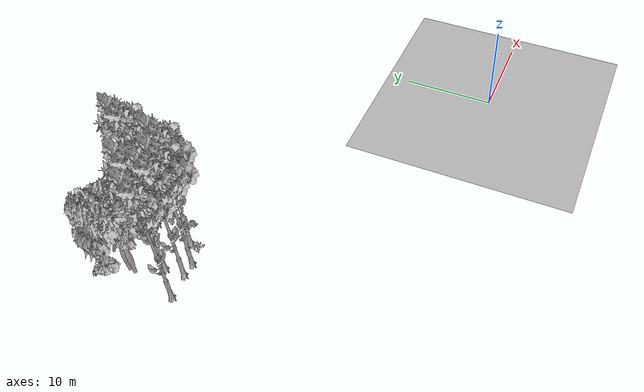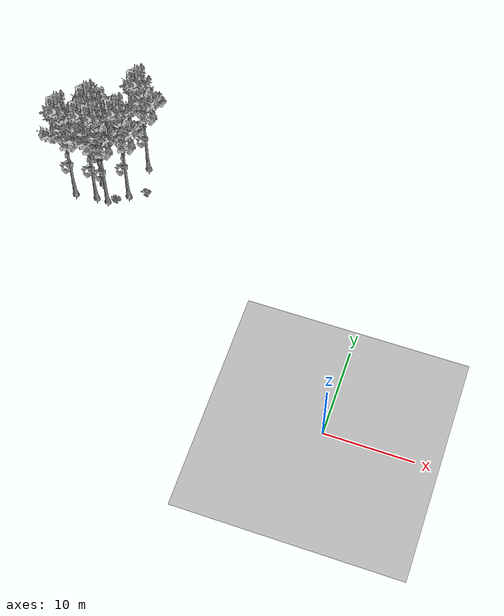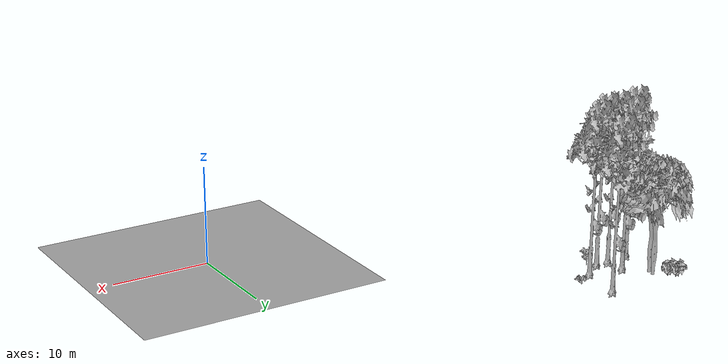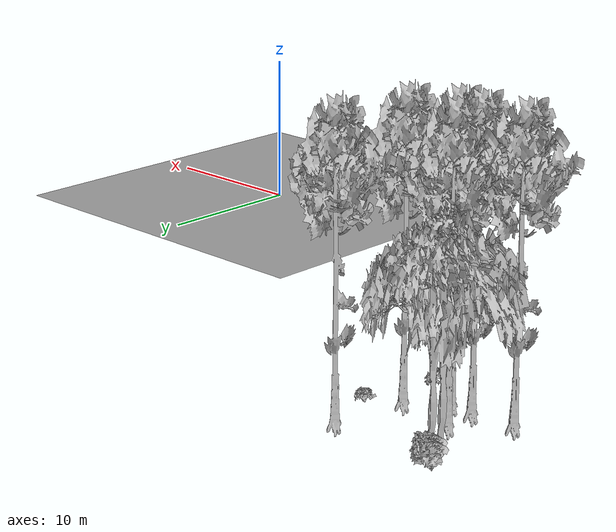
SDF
<sdf version="1.7">
 <world name="default">
  <model name="ground_plane">
   <static>1</static>
   <link name="link">
    <collision name="collision">
     <pose>-50 0 0 0 -0 0</pose>
     <geometry><plane><normal>0 0 1</normal><size>80 80</size></plane></geometry>
     <surface><contact><ode><min_depth>0.01</min_depth><max_vel>0</max_vel></ode></contact></surface>
    </collision>
    <visual name="grass">
     <cast_shadows>0</cast_shadows>
     <geometry>
      <mesh>
       <scale>0.46714285714285714 0.46714285714285714 0.1</scale>
       <uri>file://grass_plane/meshes/grass_plane.dae</uri>
      </mesh>
     </geometry>
    </visual>
   </link>
  </model>
  <model name="Tree 282">
   <static>1</static>
   <pose>-36.353693837260636 19.680766267753036 0 1.57079 -0 0</pose>
   <link name="link">
    <collision name="collision">
     <geometry><mesh><scale>3.5 5 3.5</scale><uri>model://tree_9/meshes/tree_9.obj</uri></mesh></geometry>
    </collision>
    <visual name="visual">
     <geometry><mesh><scale>3.5 5 3.5</scale><uri>model://tree_9/meshes/tree_9.obj</uri></mesh></geometry>
    </visual>
   </link>
  </model>
  <model name="Tree 319">
   <static>1</static>
   <pose>-29.605560113764376 25.787236509368313 0 1.57079 -0 0</pose>
   <link name="link">
    <collision name="collision">
     <geometry><mesh><scale>3.5 5 3.5</scale><uri>model://tree_9/meshes/tree_9.obj</uri></mesh></geometry>
    </collision>
    <visual name="visual">
     <geometry><mesh><scale>3.5 5 3.5</scale><uri>model://tree_9/meshes/tree_9.obj</uri></mesh></geometry>
    </visual>
   </link>
  </model>
  <model name="Tree 322">
   <static>1</static>
   <pose>-33.838758594428114 19.952929473436868 0 1.57079 -0 0</pose>
   <link name="link">
    <collision name="collision">
     <geometry><mesh><scale>3.5 5 3.5</scale><uri>model://tree_9/meshes/tree_9.obj</uri></mesh></geometry>
    </collision>
    <visual name="visual">
     <geometry><mesh><scale>3.5 5 3.5</scale><uri>model://tree_9/meshes/tree_9.obj</uri></mesh></geometry>
    </visual>
   </link>
  </model>
  <model name="Tree 477">
   <static>1</static>
   <pose>-32.446020903343864 19.914805420141747 0 1.57079 -0 0</pose>
   <link name="link">
    <collision name="collision">
     <geometry><mesh><scale>3.5 5 3.5</scale><uri>model://tree_9/meshes/tree_9.obj</uri></mesh></geometry>
    </collision>
    <visual name="visual">
     <geometry><mesh><scale>3.5 5 3.5</scale><uri>model://tree_9/meshes/tree_9.obj</uri></mesh></geometry>
    </visual>
   </link>
  </model>
  <model name="Tree 491">
   <static>1</static>
   <pose>-33.93164587235237 22.0098021157486 0 1.57079 -0 0</pose>
   <link name="link">
    <collision name="collision">
     <geometry><mesh><scale>3.5 5 3.5</scale><uri>model://tree_9/meshes/tree_9.obj</uri></mesh></geometry>
    </collision>
    <visual name="visual">
     <geometry><mesh><scale>3.5 5 3.5</scale><uri>model://tree_9/meshes/tree_9.obj</uri></mesh></geometry>
    </visual>
   </link>
  </model>
  <model name="Tree 570">
   <static>1</static>
   <pose>-30.396551542692865 21.395180202666133 0 1.57079 -0 0</pose>
   <link name="link">
    <collision name="collision">
     <geometry><mesh><scale>3.5 5 3.5</scale><uri>model://tree_9/meshes/tree_9.obj</uri></mesh></geometry>
    </collision>
    <visual name="visual">
     <geometry><mesh><scale>3.5 5 3.5</scale><uri>model://tree_9/meshes/tree_9.obj</uri></mesh></geometry>
    </visual>
   </link>
  </model>
  <model name="Tree 607">
   <static>1</static>
   <pose>-35.36108816998275 24.93940118455106 0 1.57079 -0 0</pose>
   <link name="link">
    <collision name="collision">
     <geometry><mesh><scale>3.5 5 3.5</scale><uri>model://tree_2/meshes/tree_2.obj</uri></mesh></geometry>
    </collision>
    <visual name="visual">
     <geometry><mesh><scale>3.5 5 3.5</scale><uri>model://tree_2/meshes/tree_2.obj</uri></mesh></geometry>
    </visual>
   </link>
  </model>
  <model name="Tree 627">
   <static>1</static>
   <pose>-35.45912909851312 24.300626451408803 0 1.57079 -0 0</pose>
   <link name="link">
    <collision name="collision">
     <geometry><mesh><scale>3.5 5 3.5</scale><uri>model://tree_2/meshes/tree_2.obj</uri></mesh></geometry>
    </collision>
    <visual name="visual">
     <geometry><mesh><scale>3.5 5 3.5</scale><uri>model://tree_2/meshes/tree_2.obj</uri></mesh></geometry>
    </visual>
   </link>
  </model>
  <model name="Bush 88">
   <static>1</static>
   <pose>-28.59467770132586 22.322680542330076 0 1.57079 -0 0</pose>
   <link name="link">
    <collision name="collision">
     <geometry><mesh><scale>2 2 2</scale><uri>model://bush_2/meshes/bush_2.obj</uri></mesh></geometry>
     <surface><contact><collide_without_contact>false</collide_without_contact></contact></surface>
    </collision>
    <visual name="visual">
     <geometry><mesh><scale>2 2 2</scale><uri>model://bush_2/meshes/bush_2.obj</uri></mesh></geometry>
    </visual>
   </link>
  </model>
  <model name="Bush 174">
   <static>1</static>
   <pose>-31.1966641873755 19.894442632269353 0 1.57079 -0 0</pose>
   <link name="link">
    <collision name="collision">
     <geometry><mesh><scale>2 2 2</scale><uri>model://bush_5/meshes/bush_5.obj</uri></mesh></geometry>
     <surface><contact><collide_without_contact>false</collide_without_contact></contact></surface>
    </collision>
    <visual name="visual">
     <geometry><mesh><scale>2 2 2</scale><uri>model://bush_5/meshes/bush_5.obj</uri></mesh></geometry>
    </visual>
   </link>
  </model>
  <model name="Bush 464">
   <static>1</static>
   <pose>-36.739412619075516 26.624565206802643 0 1.57079 -0 0</pose>
   <link name="link">
    <collision name="collision">
     <geometry><mesh><scale>2 2 2</scale><uri>model://bush_1/meshes/bush_1.obj</uri></mesh></geometry>
     <surface><contact><collide_without_contact>false</collide_without_contact></contact></surface>
    </collision>
    <visual name="visual">
     <geometry><mesh><scale>2 2 2</scale><uri>model://bush_1/meshes/bush_1.obj</uri></mesh></geometry>
    </visual>
   </link>
  </model>
  <model name="Bush 597">
   <static>1</static>
   <pose>-36.21276656407605 26.069225159238073 0 1.57079 -0 0</pose>
   <link name="link">
    <collision name="collision">
     <geometry><mesh><scale>2 2 2</scale><uri>model://bush_1/meshes/bush_1.obj</uri></mesh></geometry>
     <surface><contact><collide_without_contact>false</collide_without_contact></contact></surface>
    </collision>
    <visual name="visual">
     <geometry><mesh><scale>2 2 2</scale><uri>model://bush_1/meshes/bush_1.obj</uri></mesh></geometry>
    </visual>
   </link>
  </model>
 </world>
</sdf>
